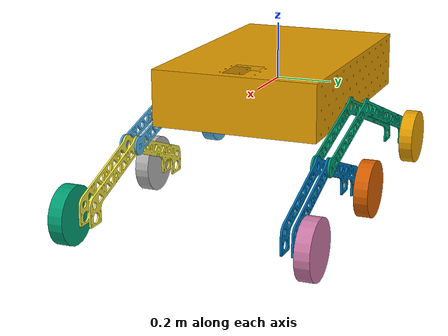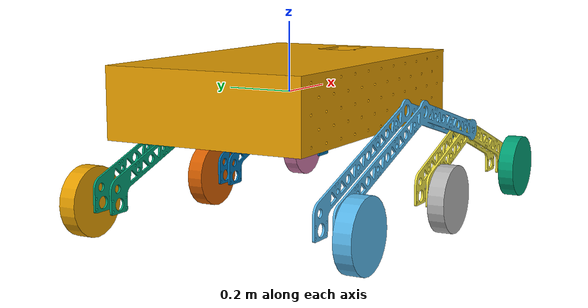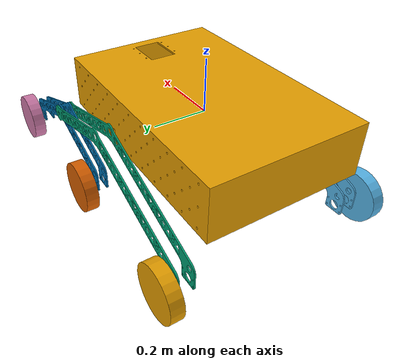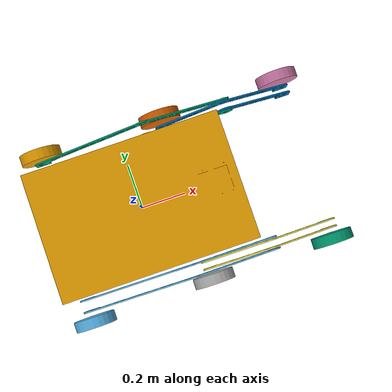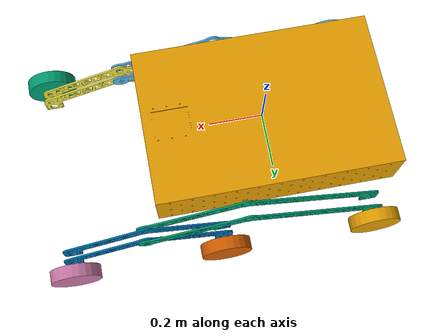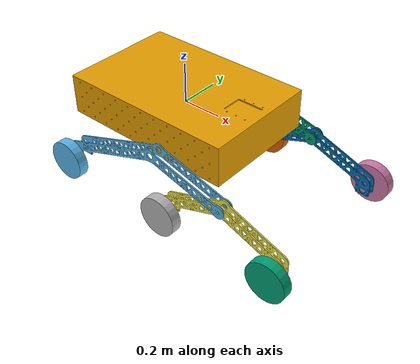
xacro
<?xml version='1.0'?>

<robot name="rover" xmlns:xacro="http://www.ros.org/wiki/xacro">

  <xacro:include filename="$(find simulation)/robot/rover_drive.gazebo" />
  <link name='chassis'>
    <pose>0 0 0.1 0 0 0</pose>

    <collision name='collision'>
      <origin rpy="0 0 0" xyz="0 0 0"/>
      <geometry>
        <box size="0.9 0.58 0.2"/>
      </geometry>
      <surface>
        <friction>
          <ode>
            <mu>0</mu>
            <mu2>0</mu2>
            <slip1>1.0</slip1>
            <slip2>1.0</slip2>
          </ode>
        </friction>
      </surface>
    </collision>

    <visual name='chassis_visual'>
      <origin rpy="0 0 0" xyz="0 0 0"/>
      <geometry>
        <mesh filename="package://simulation/robot/chassis_only.dae"/>
      </geometry>
    </visual>
    <inertial>
      <mass value="20.0"/>
      <origin xyz="0.15 0 0" rpy=" 0 0 0"/>
      <inertia
          ixx="0.627" ixy="0" ixz="0"
          iyy="1.72" iyz="0"
          izz="1.91"/>
    </inertial>
  </link>

  <link name='upper_right_suspension'>
    <pose>0 0 0 0 0 0 </pose>

    <collision name='collision'>
      <origin rpy="0 0 0" xyz="0 0 0"/>
      <geometry>
        <mesh filename="package://simulation/robot/upper_sus.dae"/>
      </geometry>>
    </collision>

    <visual name='visual'>
      <geometry>
        <mesh filename="package://simulation/robot/upper_sus.dae"/>
      </geometry>
    </visual>
    <inertial>
      <mass value="1.0"/>
      <origin xyz="0.05 0 0" rpy=" 0 0 0"/>
      <inertia
        ixx="1.0" ixy="0.0" ixz="0.0"
        iyy="1.0" iyz="0.0"
        izz="1.0"/>
    </inertial>
  </link>

  <joint name="upper_right_sus_joint" type="revolute">
    <origin xyz="0.1212 -0.3702 -0.05" rpy="0 0 3.14"/>
    <limit upper="0.57" lower="-0.57" velocity="0.5" effort="0.5"/>
    <axis xyz="0 1 0" />
    <parent link="chassis"/>
    <child link="upper_right_suspension"/>
  </joint>

  <link name='upper_left_suspension'>
    <pose>0 0 0 0 0 0</pose>

    <collision name='collision'>
      <origin rpy="0 0 0" xyz="0 0 0"/>
      <geometry>
        <mesh filename="package://simulation/robot/upper_sus.dae"/>
      </geometry>>
    </collision>

    <visual name='visual'>
      <geometry>
        <mesh filename="package://simulation/robot/upper_sus.dae"/>
      </geometry>
    </visual>
    <inertial>
      <mass value="1.0"/>
      <origin xyz="0 0 0" rpy=" 0 0 0"/>
      <inertia
        ixx="1.0" ixy="0.0" ixz="0.0"
        iyy="1.0" iyz="0.0"
        izz="1.0"/>
    </inertial>
  </link>

  <joint name="upper_left_sus_joint" type="revolute">
    <origin xyz="0.1212 0.3102 -0.05" rpy="0 0 3.14"/>
    <limit upper="0.57" lower="-0.57" velocity="0.5" effort="0.5"/>
    <axis xyz="0 1 0" />
    <parent link="chassis"/>
    <child link="upper_left_suspension"/>
  </joint>

  <link name='lower_right_suspension'>
    <pose>0 0 0 0 0 0</pose>

    <collision name='collision'>
      <origin rpy="0 0 0" xyz="0 0 0"/>
      <geometry>
        <mesh filename="package://simulation/robot/lower_sus.dae"/>
      </geometry>>
    </collision>

    <visual name='visual'>
      <geometry>
        <mesh filename="package://simulation/robot/lower_sus.dae"/>
      </geometry>
    </visual>
    <inertial>
      <mass value="1.0"/>
      <origin xyz="0 0 0" rpy=" 0 0 0"/>
      <inertia
        ixx="1.0" ixy="0.0" ixz="0.0"
        iyy="1.0" iyz="0.0"
        izz="1.0"/>
    </inertial>
  </link>

  <joint name="lower_right_sus_joint" type="revolute">
    <origin xyz="-0.3864 -0.01 -0.1035" rpy="0 0 0"/>
    <axis xyz="0 1 0" />
    <limit upper="0.57" lower="-0.57" velocity="0.5" effort="0.5"/>
    <dynamics friction="0.9"/>
    <parent link="upper_right_suspension"/>
    <child link="lower_right_suspension"/>
  </joint>

  <link name='lower_left_suspension'>
    <pose>0 0 0 0 0 0</pose>

    <collision name='collision'>
      <origin rpy="0 0 0" xyz="0 0 0"/>
      <geometry>
        <mesh filename="package://simulation/robot/lower_sus.dae"/>
      </geometry>>
    </collision>

    <visual name='visual'>
      <geometry>
        <mesh filename="package://simulation/robot/lower_sus.dae"/>
      </geometry>
    </visual>
    <inertial>
      <mass value="1.0"/>
      <origin xyz="0 0 0" rpy=" 0 0 0"/>
      <inertia
        ixx="1.0" ixy="0.0" ixz="0.0"
        iyy="1.0" iyz="0.0"
        izz="1.0"/>
    </inertial>
  </link>

  <joint name="lower_left_sus_joint" type="revolute">
    <origin xyz="-0.3864 -0.01 -0.1035" rpy="0 0 0"/>
    <limit upper="0.57" lower="-0.57" velocity="0.5" effort="0.5"/>
    <axis xyz="0 1 0" />
    <parent link="upper_left_suspension"/>
    <child link="lower_left_suspension"/>
  </joint>

  <!-- Kinect Link -->

  <!-- Camera -->

    <!-- Camera -->

  <!-- Hokuyo Laser -->

  <!-- IMU sensor -->

  <!-- GPS sensor -->

  <link name="middle_left_wheel">
    <collision name="collision">
      <origin xyz="0 0 0" rpy="0 0 0"/>
      <geometry>
        <cylinder radius="0.1" length="0.05"/>
      </geometry>
    </collision>
    <visual name="left_wheel_visual">
      <origin xyz="0 0 0" rpy="0 0 0"/>
      <geometry>
        <cylinder radius="0.1" length="0.05"/>
      </geometry>
    </visual>
    <inertial>
      <origin xyz="0 0 0" rpy="0 0 0"/>
      <mass value="5"/>
      <cylinder_inertia m="5" r="0.1" h="0.05"/>
      <inertia
        ixx="1.0" ixy="0.0" ixz="0.0"
        iyy="1.0" iyz="0.0"
        izz="1.0"/>
    </inertial>
  </link>

  <link name="front_left_wheel">
    <collision name="collision">
      <origin xyz="0 0 0" rpy="0 0 0"/>
      <geometry>
        <cylinder radius="0.1" length="0.05"/>
      </geometry>
    </collision>
    <visual name="visual">
      <origin xyz="0 0 0" rpy="0 0 0"/>
      <geometry>
        <cylinder radius="0.1" length="0.05"/>
      </geometry>
    </visual>
    <inertial>
      <origin xyz="0 0 0" rpy="0 0 0"/>
      <mass value="5"/>
      <cylinder_inertia m="5" r="0.1" h="0.05"/>
      <inertia
        ixx="1.0" ixy="0.0" ixz="0.0"
        iyy="1.0" iyz="0.0"
        izz="1.0"/>
    </inertial>
  </link>

  <link name="middle_right_wheel">
    <collision name="collision">
      <origin xyz="0 0 0" rpy="0 0 0"/>
      <geometry>
        <cylinder radius="0.1" length="0.05"/>
      </geometry>
    </collision>
    <visual name="visual">
      <origin xyz="0 0 0" rpy="0 0 0"/>
      <geometry>
        <cylinder radius="0.1" length="0.05"/>
      </geometry>
    </visual>
    <inertial>
      <origin xyz="0 0 0" rpy="0 0 0"/>
      <mass value="5"/>
      <cylinder_inertia m="5" r="0.1" h="0.05"/>
      <inertia
        ixx="1.0" ixy="0.0" ixz="0.0"
        iyy="1.0" iyz="0.0"
        izz="1.0"/>
    </inertial>
  </link>

  <link name="back_left_wheel">
    <collision name="collision">
      <origin xyz="0 0 0" rpy="0 0 0"/>
      <geometry>
        <cylinder radius="0.1" length="0.05"/>
      </geometry>
    </collision>
    <visual name="visual">
      <origin xyz="0 0 0" rpy="0 0 0"/>
      <geometry>
        <cylinder radius="0.1" length="0.05"/>
      </geometry>
    </visual>
    <inertial>
      <origin xyz="0 0 0" rpy="0 0 0"/>
      <mass value="5"/>
      <cylinder_inertia m="5" r="0.1" h="0.05"/>
      <inertia
        ixx="1.0" ixy="0.0" ixz="0.0"
        iyy="1.0" iyz="0.0"
        izz="1.0"/>
    </inertial>
  </link>

  <link name="back_right_wheel">
    <collision name="collision">
      <origin xyz="0 0 0" rpy="0 0 0"/>
      <geometry>
        <cylinder radius="0.1" length="0.05"/>
      </geometry>
    </collision>
    <visual name="visual">
      <origin xyz="0 0 0" rpy="0 0 0"/>
      <geometry>
        <cylinder radius="0.1" length="0.05"/>
      </geometry>
    </visual>
    <inertial>
      <origin xyz="0 0 0" rpy="0 0 0"/>
      <mass value="5"/>
      <cylinder_inertia m="5" r="0.1" h="0.05"/>
      <inertia
        ixx="1.0" ixy="0.0" ixz="0.0"
        iyy="1.0" iyz="0.0"
        izz="1.0"/>
    </inertial>
  </link>

  <link name="front_right_wheel">
    <collision name="collision">
      <origin xyz="0 0 0" rpy="0 0 0"/>
      <geometry>
        <cylinder radius="0.1" length="0.05"/>
      </geometry>
    </collision>
    <visual name="visual">
      <origin xyz="0 0 0" rpy="0 0 0"/>
      <geometry>
        <cylinder radius="0.1" length="0.05"/>
      </geometry>
    </visual>
    <inertial>
      <origin xyz="0 0 0" rpy="0 0 0"/>
      <mass value="5"/>
      <cylinder_inertia m="5" r="0.1" h="0.05"/>
      <inertia
        ixx="1.0" ixy="0.0" ixz="0.0"
        iyy="1.0" iyz="0.0"
        izz="1.0"/>
    </inertial>
  </link>

  <joint type="continuous" name="middle_left_wheel_hinge">
    <origin xyz="0.3 -0.09 -0.1593" rpy="0 -1.5707 1.5707"/>
    <child link="middle_left_wheel"/>
    <parent link="lower_left_suspension"/>
    <axis xyz="0 0 1" rpy="0 0 0"/>
    <limit effort="100" velocity="100"/>
    <joint_properties damping="0.0" friction="0.0"/>
  </joint>

  <joint type="continuous" name="back_left_wheel_hinge">
    <origin xyz="-0.3 -0.09 -0.1593" rpy="0 -1.5707 1.5707"/>
    <child link="front_left_wheel"/>
    <parent link="lower_left_suspension"/>
    <axis xyz="0 0 1" rpy="0 0 0"/>
    <limit effort="100" velocity="100"/>
    <joint_properties damping="0.0" friction="0.0"/>
  </joint>

  <joint type="continuous" name="front_left_wheel_hinge">
    <origin xyz="0.5136 -0.101 -0.237" rpy="0 -1.5707 1.5707"/>
    <child link="back_left_wheel"/>
    <parent link="upper_left_suspension"/>
    <axis xyz="0 0 1" rpy="0 0 0"/>
    <limit effort="100" velocity="100"/>
    <joint_properties damping="0.0" friction="0.0"/>
  </joint>

  <joint type="continuous" name="front_right_wheel_hinge">
    <origin xyz="0.5136 0.051 -0.237" rpy="0 -1.5707 1.5707"/>
    <child link="back_right_wheel"/>
    <parent link="upper_right_suspension"/>
    <axis xyz="0 0 1" rpy="0 0 0"/>
    <limit effort="100" velocity="100"/>
    <joint_properties damping="0.0" friction="0.0"/>
  </joint>

  <joint type="continuous" name="middle_right_wheel_hinge">
    <origin xyz="0.3 0.05 -0.1593" rpy="0 -1.5707 1.5707"/>
    <child link="middle_right_wheel"/>
    <parent link="lower_right_suspension"/>
    <axis xyz="0 0 1" rpy="0 0 0"/>
    <limit effort="100" velocity="100"/>
    <joint_properties damping="0.0" friction="0.0"/>
  </joint>
  <joint type="continuous" name="back_right_wheel_hinge">
    <origin xyz="-0.3 0.05 -0.1593" rpy="0 -1.5707 1.5707"/>
    <child link="front_right_wheel"/>
    <parent link="lower_right_suspension"/>
    <axis xyz="0 0 1" rpy="0 0 0"/>
    <limit effort="100" velocity="100"/>
    <joint_properties damping="0.0" friction="0.0"/>
  </joint>
</robot>
